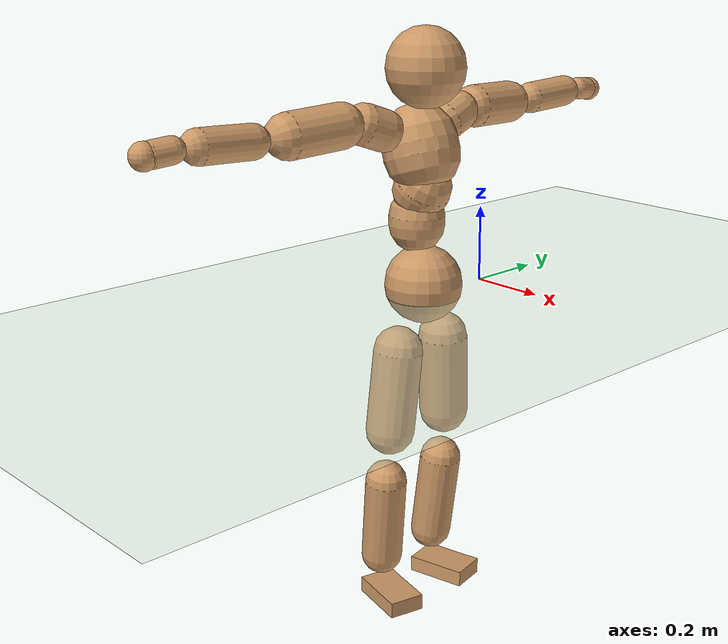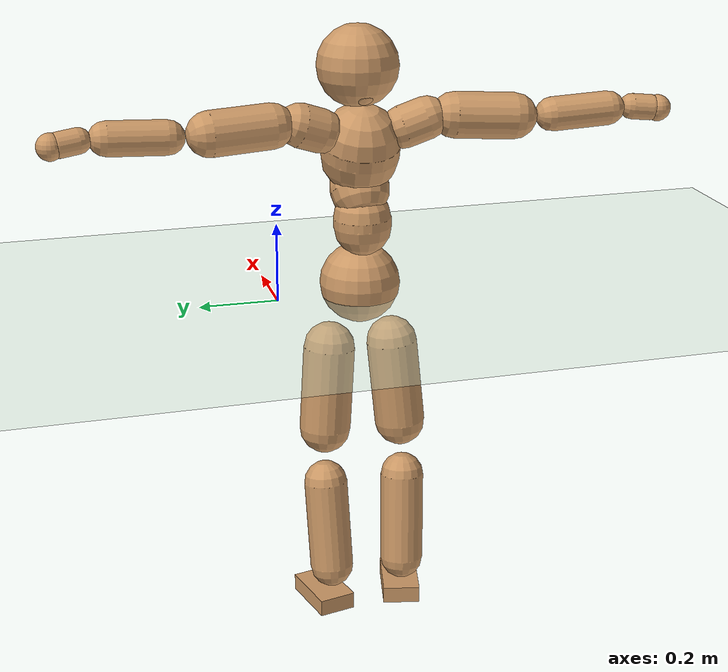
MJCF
<mujoco model="humanoid">
  <compiler coordinate="local"/>
  <default>
    <joint damping="0.0" armature="0.01" stiffness="0.0" limited="true"/>
    <geom conaffinity="1" condim="3" contype="7" margin="0.001" rgba="0.8 0.6 .4 1"/>
  </default>
  <asset>
    <texture type="skybox" builtin="gradient" rgb1=".4 .5 .6" rgb2="0 0 0" width="100" height="100"/>
    <texture builtin="flat" height="1278" mark="cross" markrgb="1 1 1" name="texgeom" random="0.01" rgb1="0.8 0.6 0.4" rgb2="0.8 0.6 0.4" type="cube" width="127"/>
    <texture builtin="checker" height="100" name="texplane" rgb1="0 0 0" rgb2="0.8 0.8 0.8" type="2d" width="100"/>
    <material name="MatPlane" reflectance="0.5" shininess="1" specular="1" texrepeat="60 60" texture="texplane"/>
    <material name="geom" texture="texgeom" texuniform="true"/>
  </asset>
  <worldbody>
    <light cutoff="100" diffuse="1 1 1" dir="-0 0 -1.3" directional="true" exponent="1" pos="0 0 1.3" specular=".1 .1 .1"/>
    <geom conaffinity="1" condim="3" name="floor" pos="0 0 0" rgba="0.8 0.9 0.8 1" size="100 100 .2" type="plane" material="MatPlane"/>
    <body name="Pelvis" pos="-0.0004 -0.2125 0.0315">
      <freejoint name="Pelvis"/>
      <geom type="sphere" contype="1" conaffinity="1" density="500" size="0.1021" pos="0.0000 0.0000 0.0000" name="Pelvis"/>
      <body name="L_Hip" pos="-0.0072 0.0789 -0.093">
        <joint name="L_Hip_x" type="hinge" pos="0 0 0" axis="1 0 0" stiffness="800" damping="80" armature="0.02" range="-180.0000 180.0000"/>
        <joint name="L_Hip_y" type="hinge" pos="0 0 0" axis="0 1 0" stiffness="800" damping="80" armature="0.02" range="-180.0000 180.0000"/>
        <joint name="L_Hip_z" type="hinge" pos="0 0 0" axis="0 0 1" stiffness="800" damping="80" armature="0.02" range="-180.0000 180.0000"/>
        <geom type="capsule" contype="1" conaffinity="1" density="500" fromto="-0.0031 0.0052 -0.0729 -0.0122 0.0206 -0.2916" size="0.0658" name="L_Hip"/>
        <body name="L_Knee" pos="-0.0153 0.0258 -0.3645">
          <joint name="L_Knee_x" type="hinge" pos="0 0 0" axis="1 0 0" stiffness="800" damping="80" armature="0.02" range="-180.0000 180.0000"/>
          <joint name="L_Knee_y" type="hinge" pos="0 0 0" axis="0 1 0" stiffness="800" damping="80" armature="0.02" range="-180.0000 180.0000"/>
          <joint name="L_Knee_z" type="hinge" pos="0 0 0" axis="0 0 1" stiffness="800" damping="80" armature="0.02" range="-180.0000 180.0000"/>
          <geom type="capsule" contype="1" conaffinity="1" density="500" fromto="-0.0097 -0.0023 -0.0775 -0.0387 -0.0093 -0.3101" size="0.0561" name="L_Knee"/>
          <body name="L_Ankle" pos="-0.0484 -0.0116 -0.3877">
            <joint name="L_Ankle_x" type="hinge" pos="0 0 0" axis="1 0 0" stiffness="800" damping="80" armature="0.02" range="-180.0000 180.0000"/>
            <joint name="L_Ankle_y" type="hinge" pos="0 0 0" axis="0 1 0" stiffness="800" damping="80" armature="0.02" range="-180.0000 180.0000"/>
            <joint name="L_Ankle_z" type="hinge" pos="0 0 0" axis="0 0 1" stiffness="800" damping="80" armature="0.02" range="-180.0000 180.0000"/>
            <geom type="box" contype="1" conaffinity="1" density="500" pos="0.0571 0.0125 -0.0278" size="0.0818 0.0484 0.0216" quat="0.9942 0.0000 0.0000 0.1078" name="L_Ankle"/>
            <body name="L_Toe" pos="0.1142 0.0251 -0.0557">
              <joint name="L_Toe_x" type="hinge" pos="0 0 0" axis="1 0 0" stiffness="500" damping="50" armature="0.02" range="-180.0000 180.0000"/>
              <joint name="L_Toe_y" type="hinge" pos="0 0 0" axis="0 1 0" stiffness="500" damping="50" armature="0.02" range="-180.0000 180.0000"/>
              <joint name="L_Toe_z" type="hinge" pos="0 0 0" axis="0 0 1" stiffness="500" damping="50" armature="0.02" range="-180.0000 180.0000"/>
              <geom type="box" contype="1" conaffinity="1" density="500" pos="0.0000 0.0000 0.0270" size="0.001 0.0024 0.001" quat="0.9935 0.0000 0.0000 0.1142" name="L_Toe"/>
            </body>
          </body>
        </body>
      </body>
      <body name="R_Hip" pos="-0.0032 -0.0766 -0.0933">
        <joint name="R_Hip_x" type="hinge" pos="0 0 0" axis="1 0 0" stiffness="800" damping="80" armature="0.02" range="-180.0000 180.0000"/>
        <joint name="R_Hip_y" type="hinge" pos="0 0 0" axis="0 1 0" stiffness="800" damping="80" armature="0.02" range="-180.0000 180.0000"/>
        <joint name="R_Hip_z" type="hinge" pos="0 0 0" axis="0 0 1" stiffness="800" damping="80" armature="0.02" range="-180.0000 180.0000"/>
        <geom type="capsule" contype="1" conaffinity="1" density="500" fromto="-0.0035 -0.0067 -0.0738 -0.0139 -0.0266 -0.2950" size="0.065" name="R_Hip"/>
        <body name="R_Knee" pos="-0.0173 -0.0333 -0.3688">
          <joint name="R_Knee_x" type="hinge" pos="0 0 0" axis="1 0 0" stiffness="800" damping="80" armature="0.02" range="-180.0000 180.0000"/>
          <joint name="R_Knee_y" type="hinge" pos="0 0 0" axis="0 1 0" stiffness="800" damping="80" armature="0.02" range="-180.0000 180.0000"/>
          <joint name="R_Knee_z" type="hinge" pos="0 0 0" axis="0 0 1" stiffness="800" damping="80" armature="0.02" range="-180.0000 180.0000"/>
          <geom type="capsule" contype="1" conaffinity="1" density="500" fromto="-0.0093 0.0028 -0.0778 -0.0371 0.0113 -0.3111" size="0.0561" name="R_Knee"/>
          <body name="R_Ankle" pos="-0.0464 0.0142 -0.3888">
            <joint name="R_Ankle_x" type="hinge" pos="0 0 0" axis="1 0 0" stiffness="800" damping="80" armature="0.02" range="-180.0000 180.0000"/>
            <joint name="R_Ankle_y" type="hinge" pos="0 0 0" axis="0 1 0" stiffness="800" damping="80" armature="0.02" range="-180.0000 180.0000"/>
            <joint name="R_Ankle_z" type="hinge" pos="0 0 0" axis="0 0 1" stiffness="800" damping="80" armature="0.02" range="-180.0000 180.0000"/>
            <geom type="box" contype="1" conaffinity="1" density="500" pos="0.0595 -0.0132 -0.0243" size="0.0835 0.0481 0.0216" quat="0.9940 0.0000 0.0000 -0.1092" name="R_Ankle"/>
            <body name="R_Toe" pos="0.119 -0.0265 -0.0486">
              <joint name="R_Toe_x" type="hinge" pos="0 0 0" axis="1 0 0" stiffness="500" damping="50" armature="0.02" range="-180.0000 180.0000"/>
              <joint name="R_Toe_y" type="hinge" pos="0 0 0" axis="0 1 0" stiffness="500" damping="50" armature="0.02" range="-180.0000 180.0000"/>
              <joint name="R_Toe_z" type="hinge" pos="0 0 0" axis="0 0 1" stiffness="500" damping="50" armature="0.02" range="-180.0000 180.0000"/>
              <geom type="box" contype="1" conaffinity="1" density="500" pos="0.0000 0.0000 0.0253" size="0.001 0.0024 0.0011" quat="0.9950 0.0000 0.0000 -0.0996" name="R_Toe"/>
            </body>
          </body>
        </body>
      </body>
      <body name="Torso" pos="-0.0249 -0.0017 0.1064">
        <joint name="Torso_x" type="hinge" pos="0 0 0" axis="1 0 0" stiffness="1000" damping="100" armature="0.02" range="-180.0000 180.0000"/>
        <joint name="Torso_y" type="hinge" pos="0 0 0" axis="0 1 0" stiffness="1000" damping="100" armature="0.02" range="-180.0000 180.0000"/>
        <joint name="Torso_z" type="hinge" pos="0 0 0" axis="0 0 1" stiffness="1000" damping="100" armature="0.02" range="-180.0000 180.0000"/>
        <geom type="capsule" contype="1" conaffinity="1" density="500" fromto="-0.0001 0.0016 0.0707 -0.0000 0.0011 0.0472" size="0.072726" name="Torso"/>
        <body name="Spine" pos="-0.0001 0.0027 0.1179">
          <joint name="Spine_x" type="hinge" pos="0 0 0" axis="1 0 0" stiffness="1000" damping="100" armature="0.02" range="-180.0000 180.0000"/>
          <joint name="Spine_y" type="hinge" pos="0 0 0" axis="0 1 0" stiffness="1000" damping="100" armature="0.02" range="-180.0000 180.0000"/>
          <joint name="Spine_z" type="hinge" pos="0 0 0" axis="0 0 1" stiffness="1000" damping="100" armature="0.02" range="-180.0000 180.0000"/>
          <geom type="capsule" contype="1" conaffinity="1" density="500" fromto="0.0201 0.0012 0.0298 0.0134 0.0008 0.0198" size="0.074493" name="Spine"/>
          <body name="Chest" pos="0.0336 0.0019 0.0496">
            <joint name="Chest_x" type="hinge" pos="0 0 0" axis="1 0 0" stiffness="1000" damping="100" armature="0.02" range="-180.0000 180.0000"/>
            <joint name="Chest_y" type="hinge" pos="0 0 0" axis="0 1 0" stiffness="1000" damping="100" armature="0.02" range="-180.0000 180.0000"/>
            <joint name="Chest_z" type="hinge" pos="0 0 0" axis="0 0 1" stiffness="1000" damping="100" armature="0.02" range="-180.0000 180.0000"/>
            <geom type="capsule" contype="1" conaffinity="1" density="500" fromto="-0.0291 -0.0005 0.0930 -0.0194 -0.0003 0.0620" size="0.09858" name="Chest"/>
            <body name="Neck" pos="-0.0589 -0.001 0.2179">
              <joint name="Neck_x" type="hinge" pos="0 0 0" axis="1 0 0" stiffness="500" damping="50" armature="0.02" range="-180.0000 180.0000"/>
              <joint name="Neck_y" type="hinge" pos="0 0 0" axis="0 1 0" stiffness="500" damping="50" armature="0.02" range="-180.0000 180.0000"/>
              <joint name="Neck_z" type="hinge" pos="0 0 0" axis="0 0 1" stiffness="500" damping="50" armature="0.02" range="-180.0000 180.0000"/>
              <geom type="capsule" contype="1" conaffinity="1" density="500" fromto="0.0102 0.0004 0.0121 0.0408 0.0014 0.0485" size="0.040455" name="Neck"/>
              <body name="Head" pos="0.051 0.0018 0.0607">
                <joint name="Head_x" type="hinge" pos="0 0 0" axis="1 0 0" stiffness="500" damping="50" armature="0.02" range="-180.0000 180.0000"/>
                <joint name="Head_y" type="hinge" pos="0 0 0" axis="0 1 0" stiffness="500" damping="50" armature="0.02" range="-180.0000 180.0000"/>
                <joint name="Head_z" type="hinge" pos="0 0 0" axis="0 0 1" stiffness="500" damping="50" armature="0.02" range="-180.0000 180.0000"/>
                <geom type="sphere" contype="1" conaffinity="1" density="500" size="0.1020" pos="0.0000 0.0000 0.0000" name="Head"/>
              </body>
            </body>
            <body name="L_Thorax" pos="-0.0409 0.0835 0.1246">
              <joint name="L_Thorax_x" type="hinge" pos="0 0 0" axis="1 0 0" stiffness="500" damping="50" armature="0.02" range="-180.0000 180.0000"/>
              <joint name="L_Thorax_y" type="hinge" pos="0 0 0" axis="0 1 0" stiffness="500" damping="50" armature="0.02" range="-180.0000 180.0000"/>
              <joint name="L_Thorax_z" type="hinge" pos="0 0 0" axis="0 0 1" stiffness="500" damping="50" armature="0.02" range="-180.0000 180.0000"/>
              <geom type="capsule" contype="1" conaffinity="1" density="500" fromto="-0.0024 0.0184 0.0064 -0.0095 0.0735 0.0255" size="0.0544" name="L_Thorax"/>
              <body name="L_Shoulder" pos="-0.0118 0.0919 0.0318">
                <joint name="L_Shoulder_x" type="hinge" pos="0 0 0" axis="1 0 0" stiffness="500" damping="50" armature="0.02" range="-720.0000 720.0000"/>
                <joint name="L_Shoulder_y" type="hinge" pos="0 0 0" axis="0 1 0" stiffness="500" damping="50" armature="0.02" range="-720.0000 720.0000"/>
                <joint name="L_Shoulder_z" type="hinge" pos="0 0 0" axis="0 0 1" stiffness="500" damping="50" armature="0.02" range="-720.0000 720.0000"/>
                <geom type="capsule" contype="1" conaffinity="1" density="500" fromto="-0.0058 0.0514 -0.0019 -0.0231 0.2054 -0.0075" size="0.0558" name="L_Shoulder"/>
                <body name="L_Elbow" pos="-0.0289 0.2568 -0.0093">
                  <joint name="L_Elbow_x" type="hinge" pos="0 0 0" axis="1 0 0" stiffness="500" damping="50" armature="0.02" range="-720.0000 720.0000"/>
                  <joint name="L_Elbow_y" type="hinge" pos="0 0 0" axis="0 1 0" stiffness="500" damping="50" armature="0.02" range="-720.0000 720.0000"/>
                  <joint name="L_Elbow_z" type="hinge" pos="0 0 0" axis="0 0 1" stiffness="500" damping="50" armature="0.02" range="-720.0000 720.0000"/>
                  <geom type="capsule" contype="1" conaffinity="1" density="500" fromto="0.0002 0.0474 0.0019 0.0008 0.1896 0.0077" size="0.0422" name="L_Elbow"/>
                  <body name="L_Wrist" pos="0.0009 0.237 0.0097">
                    <joint name="L_Wrist_x" type="hinge" pos="0 0 0" axis="1 0 0" stiffness="300" damping="30" armature="0.02" range="-180.0000 180.0000"/>
                    <joint name="L_Wrist_y" type="hinge" pos="0 0 0" axis="0 1 0" stiffness="300" damping="30" armature="0.02" range="-180.0000 180.0000"/>
                    <joint name="L_Wrist_z" type="hinge" pos="0 0 0" axis="0 0 1" stiffness="300" damping="30" armature="0.02" range="-180.0000 180.0000"/>
                    <geom type="capsule" contype="1" conaffinity="1" density="500" fromto="-0.0026 0.0163 -0.0019 -0.0105 0.0651 -0.0077" size="0.0312" name="L_Wrist"/>
                    <body name="L_Hand" pos="-0.0132 0.0814 -0.0097">
                      <joint name="L_Hand_x" type="hinge" pos="0 0 0" axis="1 0 0" stiffness="300" damping="30" armature="0.02" range="-180.0000 180.0000"/>
                      <joint name="L_Hand_y" type="hinge" pos="0 0 0" axis="0 1 0" stiffness="300" damping="30" armature="0.02" range="-180.0000 180.0000"/>
                      <joint name="L_Hand_z" type="hinge" pos="0 0 0" axis="0 0 1" stiffness="300" damping="30" armature="0.02" range="-180.0000 180.0000"/>
                      <geom type="sphere" contype="1" conaffinity="1" density="500" size="0.0328" pos="0.0000 0.0000 0.0000" name="L_Hand"/>
                    </body>
                  </body>
                </body>
              </body>
            </body>
            <body name="R_Thorax" pos="-0.0455 -0.085 0.1227">
              <joint name="R_Thorax_x" type="hinge" pos="0 0 0" axis="1 0 0" stiffness="500" damping="50" armature="0.02" range="-180.0000 180.0000"/>
              <joint name="R_Thorax_y" type="hinge" pos="0 0 0" axis="0 1 0" stiffness="500" damping="50" armature="0.02" range="-180.0000 180.0000"/>
              <joint name="R_Thorax_z" type="hinge" pos="0 0 0" axis="0 0 1" stiffness="500" damping="50" armature="0.02" range="-180.0000 180.0000"/>
              <geom type="capsule" contype="1" conaffinity="1" density="500" fromto="-0.0025 -0.0189 0.0069 -0.0100 -0.0757 0.0277" size="0.0535" name="R_Thorax"/>
              <body name="R_Shoulder" pos="-0.0125 -0.0946 0.0347">
                <joint name="R_Shoulder_x" type="hinge" pos="0 0 0" axis="1 0 0" stiffness="500" damping="50" armature="0.02" range="-720.0000 720.0000"/>
                <joint name="R_Shoulder_y" type="hinge" pos="0 0 0" axis="0 1 0" stiffness="500" damping="50" armature="0.02" range="-720.0000 720.0000"/>
                <joint name="R_Shoulder_z" type="hinge" pos="0 0 0" axis="0 0 1" stiffness="500" damping="50" armature="0.02" range="-720.0000 720.0000"/>
                <geom type="capsule" contype="1" conaffinity="1" density="500" fromto="-0.0044 -0.0502 -0.0028 -0.0178 -0.2008 -0.0114" size="0.0576" name="R_Shoulder"/>
                <body name="R_Elbow" pos="-0.0222 -0.251 -0.0142">
                  <joint name="R_Elbow_x" type="hinge" pos="0 0 0" axis="1 0 0" stiffness="500" damping="50" armature="0.02" range="-720.0000 720.0000"/>
                  <joint name="R_Elbow_y" type="hinge" pos="0 0 0" axis="0 1 0" stiffness="500" damping="50" armature="0.02" range="-720.0000 720.0000"/>
                  <joint name="R_Elbow_z" type="hinge" pos="0 0 0" axis="0 0 1" stiffness="500" damping="50" armature="0.02" range="-720.0000 720.0000"/>
                  <geom type="capsule" contype="1" conaffinity="1" density="500" fromto="-0.0003 -0.0491 0.0022 -0.0010 -0.1965 0.0088" size="0.0428" name="R_Elbow"/>
                  <body name="R_Wrist" pos="-0.0013 -0.2456 0.0111">
                    <joint name="R_Wrist_x" type="hinge" pos="0 0 0" axis="1 0 0" stiffness="300" damping="30" armature="0.02" range="-180.0000 180.0000"/>
                    <joint name="R_Wrist_y" type="hinge" pos="0 0 0" axis="0 1 0" stiffness="300" damping="30" armature="0.02" range="-180.0000 180.0000"/>
                    <joint name="R_Wrist_z" type="hinge" pos="0 0 0" axis="0 0 1" stiffness="300" damping="30" armature="0.02" range="-180.0000 180.0000"/>
                    <geom type="capsule" contype="1" conaffinity="1" density="500" fromto="-0.0022 -0.0165 -0.0015 -0.0087 -0.0662 -0.0060" size="0.0322" name="R_Wrist"/>
                    <body name="R_Hand" pos="-0.0108 -0.0827 -0.0076">
                      <joint name="R_Hand_x" type="hinge" pos="0 0 0" axis="1 0 0" stiffness="300" damping="30" armature="0.02" range="-180.0000 180.0000"/>
                      <joint name="R_Hand_y" type="hinge" pos="0 0 0" axis="0 1 0" stiffness="300" damping="30" armature="0.02" range="-180.0000 180.0000"/>
                      <joint name="R_Hand_z" type="hinge" pos="0 0 0" axis="0 0 1" stiffness="300" damping="30" armature="0.02" range="-180.0000 180.0000"/>
                      <geom type="sphere" contype="1" conaffinity="1" density="500" size="0.0334" pos="0.0000 0.0000 0.0000" name="R_Hand"/>
                    </body>
                  </body>
                </body>
              </body>
            </body>
          </body>
        </body>
      </body>
    </body>
  </worldbody>
  <actuator>
    <motor name="L_Hip_x" joint="L_Hip_x" gear="500"/>
    <motor name="L_Hip_y" joint="L_Hip_y" gear="500"/>
    <motor name="L_Hip_z" joint="L_Hip_z" gear="500"/>
    <motor name="L_Knee_x" joint="L_Knee_x" gear="500"/>
    <motor name="L_Knee_y" joint="L_Knee_y" gear="500"/>
    <motor name="L_Knee_z" joint="L_Knee_z" gear="500"/>
    <motor name="L_Ankle_x" joint="L_Ankle_x" gear="500"/>
    <motor name="L_Ankle_y" joint="L_Ankle_y" gear="500"/>
    <motor name="L_Ankle_z" joint="L_Ankle_z" gear="500"/>
    <motor name="L_Toe_x" joint="L_Toe_x" gear="500"/>
    <motor name="L_Toe_y" joint="L_Toe_y" gear="500"/>
    <motor name="L_Toe_z" joint="L_Toe_z" gear="500"/>
    <motor name="R_Hip_x" joint="R_Hip_x" gear="500"/>
    <motor name="R_Hip_y" joint="R_Hip_y" gear="500"/>
    <motor name="R_Hip_z" joint="R_Hip_z" gear="500"/>
    <motor name="R_Knee_x" joint="R_Knee_x" gear="500"/>
    <motor name="R_Knee_y" joint="R_Knee_y" gear="500"/>
    <motor name="R_Knee_z" joint="R_Knee_z" gear="500"/>
    <motor name="R_Ankle_x" joint="R_Ankle_x" gear="500"/>
    <motor name="R_Ankle_y" joint="R_Ankle_y" gear="500"/>
    <motor name="R_Ankle_z" joint="R_Ankle_z" gear="500"/>
    <motor name="R_Toe_x" joint="R_Toe_x" gear="500"/>
    <motor name="R_Toe_y" joint="R_Toe_y" gear="500"/>
    <motor name="R_Toe_z" joint="R_Toe_z" gear="500"/>
    <motor name="Torso_x" joint="Torso_x" gear="500"/>
    <motor name="Torso_y" joint="Torso_y" gear="500"/>
    <motor name="Torso_z" joint="Torso_z" gear="500"/>
    <motor name="Spine_x" joint="Spine_x" gear="500"/>
    <motor name="Spine_y" joint="Spine_y" gear="500"/>
    <motor name="Spine_z" joint="Spine_z" gear="500"/>
    <motor name="Chest_x" joint="Chest_x" gear="500"/>
    <motor name="Chest_y" joint="Chest_y" gear="500"/>
    <motor name="Chest_z" joint="Chest_z" gear="500"/>
    <motor name="Neck_x" joint="Neck_x" gear="500"/>
    <motor name="Neck_y" joint="Neck_y" gear="500"/>
    <motor name="Neck_z" joint="Neck_z" gear="500"/>
    <motor name="Head_x" joint="Head_x" gear="500"/>
    <motor name="Head_y" joint="Head_y" gear="500"/>
    <motor name="Head_z" joint="Head_z" gear="500"/>
    <motor name="L_Thorax_x" joint="L_Thorax_x" gear="500"/>
    <motor name="L_Thorax_y" joint="L_Thorax_y" gear="500"/>
    <motor name="L_Thorax_z" joint="L_Thorax_z" gear="500"/>
    <motor name="L_Shoulder_x" joint="L_Shoulder_x" gear="500"/>
    <motor name="L_Shoulder_y" joint="L_Shoulder_y" gear="500"/>
    <motor name="L_Shoulder_z" joint="L_Shoulder_z" gear="500"/>
    <motor name="L_Elbow_x" joint="L_Elbow_x" gear="500"/>
    <motor name="L_Elbow_y" joint="L_Elbow_y" gear="500"/>
    <motor name="L_Elbow_z" joint="L_Elbow_z" gear="500"/>
    <motor name="L_Wrist_x" joint="L_Wrist_x" gear="500"/>
    <motor name="L_Wrist_y" joint="L_Wrist_y" gear="500"/>
    <motor name="L_Wrist_z" joint="L_Wrist_z" gear="500"/>
    <motor name="L_Hand_x" joint="L_Hand_x" gear="500"/>
    <motor name="L_Hand_y" joint="L_Hand_y" gear="500"/>
    <motor name="L_Hand_z" joint="L_Hand_z" gear="500"/>
    <motor name="R_Thorax_x" joint="R_Thorax_x" gear="500"/>
    <motor name="R_Thorax_y" joint="R_Thorax_y" gear="500"/>
    <motor name="R_Thorax_z" joint="R_Thorax_z" gear="500"/>
    <motor name="R_Shoulder_x" joint="R_Shoulder_x" gear="500"/>
    <motor name="R_Shoulder_y" joint="R_Shoulder_y" gear="500"/>
    <motor name="R_Shoulder_z" joint="R_Shoulder_z" gear="500"/>
    <motor name="R_Elbow_x" joint="R_Elbow_x" gear="500"/>
    <motor name="R_Elbow_y" joint="R_Elbow_y" gear="500"/>
    <motor name="R_Elbow_z" joint="R_Elbow_z" gear="500"/>
    <motor name="R_Wrist_x" joint="R_Wrist_x" gear="500"/>
    <motor name="R_Wrist_y" joint="R_Wrist_y" gear="500"/>
    <motor name="R_Wrist_z" joint="R_Wrist_z" gear="500"/>
    <motor name="R_Hand_x" joint="R_Hand_x" gear="500"/>
    <motor name="R_Hand_y" joint="R_Hand_y" gear="500"/>
    <motor name="R_Hand_z" joint="R_Hand_z" gear="500"/>
  </actuator>
  <contact>
    <exclude body1="Torso" body2="Chest"/>
    <exclude body1="Head" body2="Chest"/>
    <exclude body1="R_Knee" body2="R_Toe"/>
    <exclude body1="R_Knee" body2="L_Ankle"/>
    <exclude body1="R_Knee" body2="L_Toe"/>
    <exclude body1="L_Knee" body2="L_Toe"/>
    <exclude body1="L_Knee" body2="R_Ankle"/>
    <exclude body1="L_Knee" body2="R_Toe"/>
    <exclude body1="L_Shoulder" body2="Chest"/>
    <exclude body1="R_Shoulder" body2="Chest"/>
  </contact>
  <sensor/>
  <size njmax="700" nconmax="700"/>
</mujoco>
